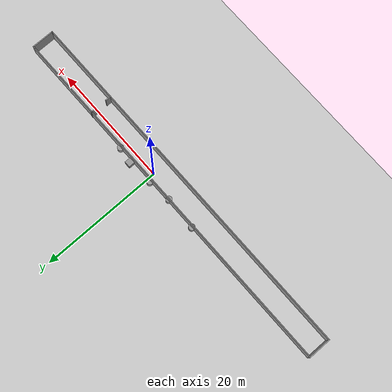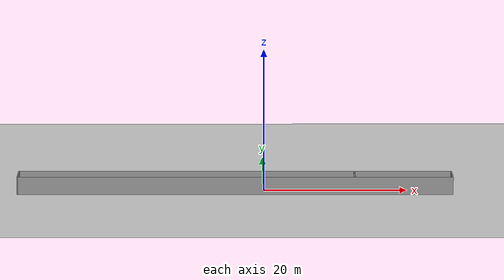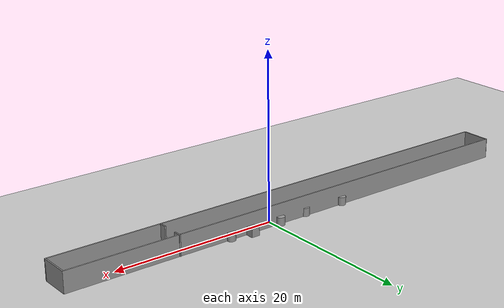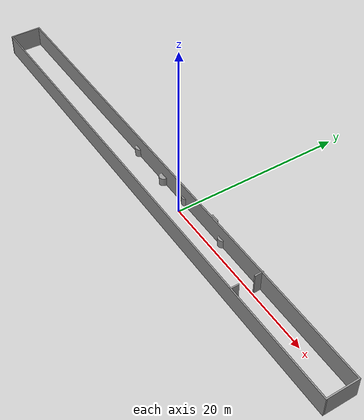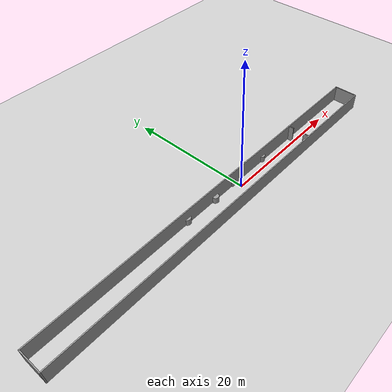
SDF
<sdf version="1.7">
 <world name="default">
  <light name="sun" type="directional">
   <pose>0 0 10 0 -0 0</pose>
   <diffuse>0.8 0.8 0.8 1</diffuse>
   <specular>0.2 0.2 0.2 1</specular>
   <attenuation>
    <range>1000</range>
    <constant>0.9</constant>
    <linear>0.01</linear>
    <quadratic>0.001</quadratic>
   </attenuation>
   <direction>-0.5 0.1 -0.9</direction>
   <spot><inner_angle>0</inner_angle><outer_angle>0</outer_angle><falloff>0</falloff></spot>
  </light>
  <model name="ground_plane">
   <pose>-3 8 0 0 -0 0</pose>
   <static>1</static>
   <link name="link">
    <collision name="collision">
     <geometry><plane><normal>0 0 1</normal><size>100 100</size></plane></geometry>
     <surface><friction><ode><mu>100</mu><mu2>50</mu2></ode></friction></surface>
    </collision>
    <visual name="visual">
     <cast_shadows>0</cast_shadows>
     <geometry><plane><normal>0 0 1</normal><size>100 100</size></plane></geometry>
     <material>
      <script><uri>file://media/materials/scripts/gazebo.material</uri><name>Gazebo/Grey</name></script>
     </material>
    </visual>
   </link>
  </model>
  <gravity>0 0 -9.8</gravity>
  <magnetic_field>6e-06 2.3e-05 -4.2e-05</magnetic_field>
  <atmosphere type="adiabatic"/>
  <physics type="ode">
   <max_step_size>0.001</max_step_size>
   <real_time_factor>1</real_time_factor>
   <real_time_update_rate>1000</real_time_update_rate>
  </physics>
  <scene><ambient>0.4 0.4 0.4 1</ambient><background>0.7 0.7 0.7 1</background><shadows>1</shadows></scene>
  <audio><device>default</device></audio>
  <spherical_coordinates>
   <surface_model>EARTH_WGS84</surface_model>
   <latitude_deg>0</latitude_deg>
   <longitude_deg>0</longitude_deg>
   <elevation>0</elevation>
   <heading_deg>0</heading_deg>
  </spherical_coordinates>
  <model name="telematica">
   <pose>-4.01769 -0.70528 0 0 -0 0</pose>
   <link name="Wall_0">
    <collision name="Wall_0_Collision">
     <geometry><box><size>60.75 0.15 2.5</size></box></geometry>
     <pose>0 0 1.25 0 -0 0</pose>
    </collision>
    <visual name="Wall_0_Visual">
     <pose>0 0 1.25 0 -0 0</pose>
     <geometry><box><size>60.75 0.15 2.5</size></box></geometry>
     <material>
      <script><uri>file://media/materials/scripts/gazebo.material</uri><name>Gazebo/Grey</name></script>
      <ambient>1 1 1 1</ambient>
     </material>
     <meta><layer>0</layer></meta>
    </visual>
    <pose>-1e-06 1.76941 0 0 -0 0</pose>
   </link>
   <link name="Wall_1">
    <collision name="Wall_1_Collision">
     <geometry><box><size>3.75 0.15 2.5</size></box></geometry>
     <pose>0 0 1.25 0 -0 0</pose>
    </collision>
    <visual name="Wall_1_Visual">
     <pose>0 0 1.25 0 -0 0</pose>
     <geometry><box><size>3.75 0.15 2.5</size></box></geometry>
     <material>
      <script><uri>file://media/materials/scripts/gazebo.material</uri><name>Gazebo/Grey</name></script>
      <ambient>1 1 1 1</ambient>
     </material>
     <meta><layer>0</layer></meta>
    </visual>
    <pose>30.3 -0.03059 0 0 -0 -1.5708</pose>
   </link>
   <link name="Wall_2">
    <collision name="Wall_2_Collision">
     <geometry><box><size>60.75 0.15 2.5</size></box></geometry>
     <pose>0 0 1.25 0 -0 0</pose>
    </collision>
    <visual name="Wall_2_Visual">
     <pose>0 0 1.25 0 -0 0</pose>
     <geometry><box><size>60.75 0.15 2.5</size></box></geometry>
     <material>
      <script><uri>file://media/materials/scripts/gazebo.material</uri><name>Gazebo/Grey</name></script>
      <ambient>1 1 1 1</ambient>
     </material>
     <meta><layer>0</layer></meta>
    </visual>
    <pose>-1e-06 -1.83059 0 0 -0 3.14159</pose>
   </link>
   <link name="Wall_3">
    <collision name="Wall_3_Collision">
     <geometry><box><size>3.75 0.15 2.5</size></box></geometry>
     <pose>0 0 1.25 0 -0 0</pose>
    </collision>
    <visual name="Wall_3_Visual">
     <pose>0 0 1.25 0 -0 0</pose>
     <geometry><box><size>3.75 0.15 2.5</size></box></geometry>
     <material>
      <script><uri>file://media/materials/scripts/gazebo.material</uri><name>Gazebo/Grey</name></script>
      <ambient>1 1 1 1</ambient>
     </material>
     <meta><layer>0</layer></meta>
    </visual>
    <pose>-30.3 -0.03059 0 0 -0 1.5708</pose>
   </link>
   <link name="Wall_5">
    <collision name="Wall_5_Collision">
     <geometry><box><size>1 0.15 2.5</size></box></geometry>
     <pose>0 0 1.25 0 -0 0</pose>
    </collision>
    <visual name="Wall_5_Visual">
     <pose>0 0 1.25 0 -0 0</pose>
     <geometry><box><size>1 0.15 2.5</size></box></geometry>
     <material>
      <script><uri>file://media/materials/scripts/gazebo.material</uri><name>Gazebo/Grey</name></script>
      <ambient>1 1 1 1</ambient>
     </material>
     <meta><layer>0</layer></meta>
    </visual>
    <pose>16.7172 1.40559 0 0 -0 -1.5708</pose>
   </link>
   <link name="Wall_7">
    <collision name="Wall_7_Collision">
     <geometry><box><size>1 0.15 2.5</size></box></geometry>
     <pose>0 0 1.25 0 -0 0</pose>
    </collision>
    <visual name="Wall_7_Visual">
     <pose>0 0 1.25 0 -0 0</pose>
     <geometry><box><size>1 0.15 2.5</size></box></geometry>
     <material>
      <script><uri>file://media/materials/scripts/gazebo.material</uri><name>Gazebo/Grey</name></script>
      <ambient>1 1 1 1</ambient>
     </material>
     <meta><layer>0</layer></meta>
    </visual>
    <pose>16.7172 -1.38465 0 0 -0 1.5708</pose>
   </link>
   <static>1</static>
  </model>
  <model name="unit_box">
   <pose>3.54372 1.63914 0.499995 1e-05 -0 0</pose>
   <link name="link">
    <inertial>
     <mass>1</mass>
     <inertia>
      <ixx>0.166667</ixx>
      <ixy>0</ixy>
      <ixz>0</ixz>
      <iyy>0.166667</iyy>
      <iyz>0</iyz>
      <izz>0.166667</izz>
     </inertia>
    </inertial>
    <collision name="collision"><geometry><box><size>1 1 1</size></box></geometry></collision>
    <visual name="visual">
     <geometry><box><size>1 1 1</size></box></geometry>
     <material>
      <script><name>Gazebo/Grey</name><uri>file://media/materials/scripts/gazebo.material</uri></script>
     </material>
    </visual>
   </link>
  </model>
  <model name="unit_cylinder">
   <pose>-4.43549 0.931004 0.499998 3e-06 -3e-06 0</pose>
   <link name="link">
    <inertial>
     <mass>1</mass>
     <inertia><ixx>0.145833</ixx><ixy>0</ixy><ixz>0</ixz><iyy>0.145833</iyy><iyz>0</iyz><izz>0.125</izz></inertia>
    </inertial>
    <collision name="collision">
     <geometry><cylinder><radius>0.5</radius><length>1</length></cylinder></geometry>
    </collision>
    <visual name="visual">
     <geometry><cylinder><radius>0.5</radius><length>1</length></cylinder></geometry>
     <material>
      <script><name>Gazebo/Grey</name><uri>file://media/materials/scripts/gazebo.material</uri></script>
     </material>
    </visual>
   </link>
  </model>
  <model name="unit_cylinder_0">
   <pose>-0.590084 1.29436 0.499997 4e-06 3e-06 -0</pose>
   <link name="link">
    <inertial>
     <mass>1</mass>
     <inertia><ixx>0.145833</ixx><ixy>0</ixy><ixz>0</ixz><iyy>0.145833</iyy><iyz>0</iyz><izz>0.125</izz></inertia>
    </inertial>
    <collision name="collision">
     <geometry><cylinder><radius>0.5</radius><length>1</length></cylinder></geometry>
    </collision>
    <visual name="visual">
     <geometry><cylinder><radius>0.5</radius><length>1</length></cylinder></geometry>
     <material>
      <script><name>Gazebo/Grey</name><uri>file://media/materials/scripts/gazebo.material</uri></script>
     </material>
    </visual>
   </link>
  </model>
  <model name="unit_cylinder_1">
   <pose>-9.72514 1.13937 0.499994 -4e-06 -3e-06 -0</pose>
   <link name="link">
    <inertial>
     <mass>1</mass>
     <inertia><ixx>0.145833</ixx><ixy>0</ixy><ixz>0</ixz><iyy>0.145833</iyy><iyz>0</iyz><izz>0.125</izz></inertia>
    </inertial>
    <collision name="collision">
     <geometry><cylinder><radius>0.5</radius><length>1</length></cylinder></geometry>
    </collision>
    <visual name="visual">
     <geometry><cylinder><radius>0.5</radius><length>1</length></cylinder></geometry>
     <material>
      <script><name>Gazebo/Grey</name><uri>file://media/materials/scripts/gazebo.material</uri></script>
     </material>
    </visual>
   </link>
  </model>
  <model name="unit_cylinder_2">
   <pose>6.1404 1.18822 0.499992 -3e-06 3e-06 0</pose>
   <link name="link">
    <inertial>
     <mass>1</mass>
     <inertia><ixx>0.145833</ixx><ixy>0</ixy><ixz>0</ixz><iyy>0.145833</iyy><iyz>0</iyz><izz>0.125</izz></inertia>
    </inertial>
    <collision name="collision">
     <geometry><cylinder><radius>0.5</radius><length>1</length></cylinder></geometry>
    </collision>
    <visual name="visual">
     <geometry><cylinder><radius>0.5</radius><length>1</length></cylinder></geometry>
     <material>
      <script><name>Gazebo/Grey</name><uri>file://media/materials/scripts/gazebo.material</uri></script>
     </material>
    </visual>
   </link>
  </model>
 </world>
</sdf>
